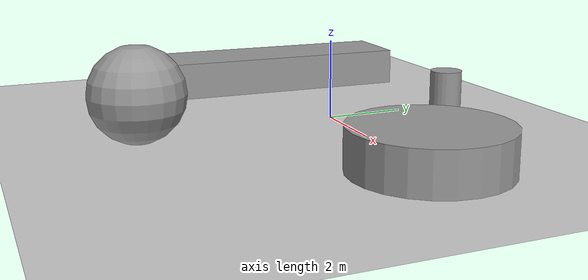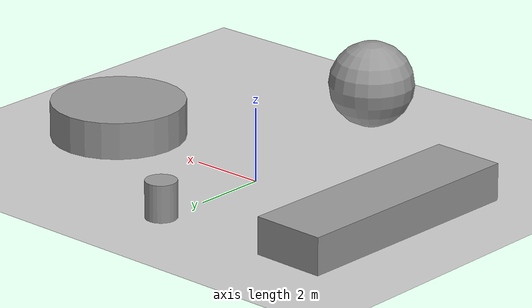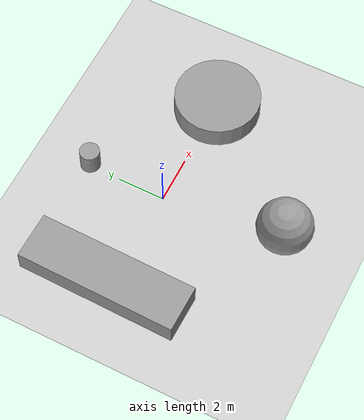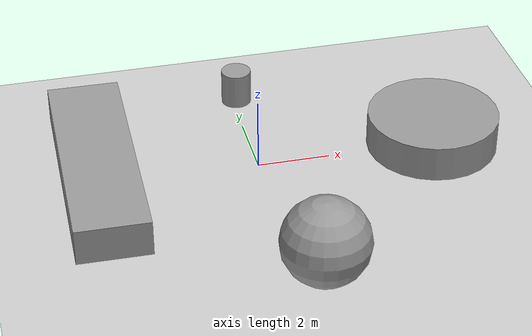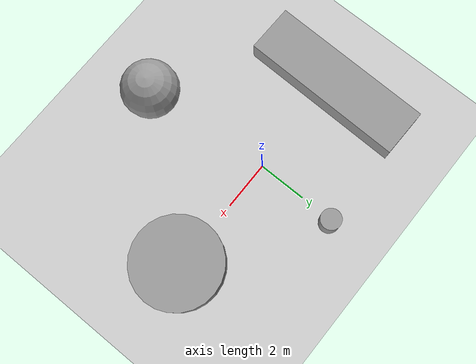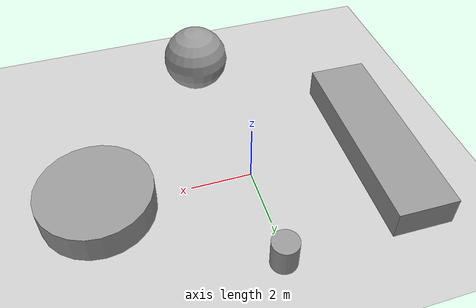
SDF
<sdf version="1.7">
 <world name="test_object">
  <light name="sun" type="directional">
   <pose>0 0 10 0 -0 0</pose>
   <diffuse>0.8 0.8 0.8 1</diffuse>
   <specular>0.2 0.2 0.2 1</specular>
   <attenuation>
    <range>1000</range>
    <constant>0.9</constant>
    <linear>0.01</linear>
    <quadratic>0.001</quadratic>
   </attenuation>
   <direction>-0.5 0.1 -0.9</direction>
   <spot><inner_angle>0</inner_angle><outer_angle>0</outer_angle><falloff>0</falloff></spot>
  </light>
  <model name="ground_plane">
   <static>1</static>
   <link name="link">
    <collision name="collision">
     <geometry><plane><normal>0 0 1</normal><size>100 100</size></plane></geometry>
     <surface>
      <contact><collide_bitmask>65535</collide_bitmask></contact>
      <friction><ode><mu>100</mu><mu2>50</mu2></ode></friction>
     </surface>
    </collision>
    <visual name="visual">
     <cast_shadows>0</cast_shadows>
     <geometry><plane><normal>0 0 1</normal><size>100 100</size></plane></geometry>
     <material>
      <script><uri>file://media/materials/scripts/gazebo.material</uri><name>Gazebo/Grey</name></script>
     </material>
    </visual>
   </link>
  </model>
  <gravity>0 0 -9.8</gravity>
  <magnetic_field>6e-06 2.3e-05 -4.2e-05</magnetic_field>
  <atmosphere type="adiabatic"/>
  <physics type="ode">
   <max_step_size>0.001</max_step_size>
   <real_time_factor>1</real_time_factor>
   <real_time_update_rate>1000</real_time_update_rate>
  </physics>
  <scene><ambient>0.4 0.4 0.4 1</ambient><background>0.7 0.7 0.7 1</background><shadows>1</shadows></scene>
  <spherical_coordinates>
   <surface_model>EARTH_WGS84</surface_model>
   <latitude_deg>0</latitude_deg>
   <longitude_deg>0</longitude_deg>
   <elevation>0</elevation>
   <heading_deg>0</heading_deg>
  </spherical_coordinates>
  <model name="unit_box">
   <pose>-4.34162 0.214454 0.499996 0 4e-06 -0.018971</pose>
   <link name="link">
    <inertial>
     <mass>1</mass>
     <inertia>
      <ixx>0.166667</ixx>
      <ixy>0</ixy>
      <ixz>0</ixz>
      <iyy>0.166667</iyy>
      <iyz>0</iyz>
      <izz>0.166667</izz>
     </inertia>
    </inertial>
    <collision name="collision"><geometry><box><size>1.97859 6.75214 1</size></box></geometry></collision>
    <visual name="visual">
     <geometry><box><size>1.97859 6.75214 1</size></box></geometry>
     <material>
      <script><name>Gazebo/Grey</name><uri>file://media/materials/scripts/gazebo.material</uri></script>
     </material>
    </visual>
   </link>
  </model>
  <model name="unit_sphere">
   <pose>0.503341 -5.13062 1.15753 0 -0 0</pose>
   <link name="link">
    <inertial>
     <mass>1</mass>
     <inertia><ixx>0.1</ixx><ixy>0</ixy><ixz>0</ixz><iyy>0.1</iyy><iyz>0</iyz><izz>0.1</izz></inertia>
    </inertial>
    <collision name="collision"><geometry><sphere><radius>1.15753</radius></sphere></geometry></collision>
    <visual name="visual">
     <geometry><sphere><radius>1.15753</radius></sphere></geometry>
     <material>
      <script><name>Gazebo/Grey</name><uri>file://media/materials/scripts/gazebo.material</uri></script>
     </material>
    </visual>
   </link>
  </model>
  <model name="unit_cylinder">
   <pose>0.122741 3.39568 0.499996 0 -0 2.9e-05</pose>
   <link name="link">
    <inertial>
     <mass>1</mass>
     <inertia><ixx>0.145833</ixx><ixy>0</ixy><ixz>0</ixz><iyy>0.145833</iyy><iyz>0</iyz><izz>0.125</izz></inertia>
    </inertial>
    <collision name="collision">
     <geometry><cylinder><radius>0.419934</radius><length>1</length></cylinder></geometry>
    </collision>
    <visual name="visual">
     <geometry><cylinder><radius>0.419934</radius><length>1</length></cylinder></geometry>
     <material>
      <script><name>Gazebo/Grey</name><uri>file://media/materials/scripts/gazebo.material</uri></script>
     </material>
    </visual>
   </link>
  </model>
  <model name="unit_cylinder_0">
   <pose>4.94109 -0.042361 0.499995 -3e-06 3e-06 -0.000643</pose>
   <link name="link">
    <inertial>
     <mass>1</mass>
     <inertia><ixx>0.145833</ixx><ixy>0</ixy><ixz>0</ixz><iyy>0.145833</iyy><iyz>0</iyz><izz>0.125</izz></inertia>
    </inertial>
    <collision name="collision">
     <geometry><cylinder><radius>1.81198</radius><length>1</length></cylinder></geometry>
    </collision>
    <visual name="visual">
     <geometry><cylinder><radius>1.81198</radius><length>1</length></cylinder></geometry>
     <material>
      <script><name>Gazebo/Grey</name><uri>file://media/materials/scripts/gazebo.material</uri></script>
     </material>
    </visual>
   </link>
  </model>
 </world>
</sdf>
